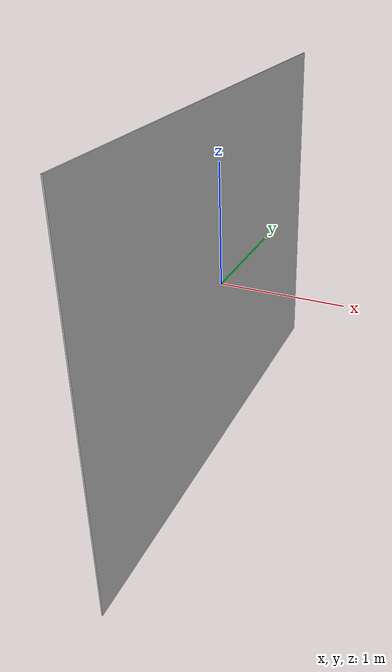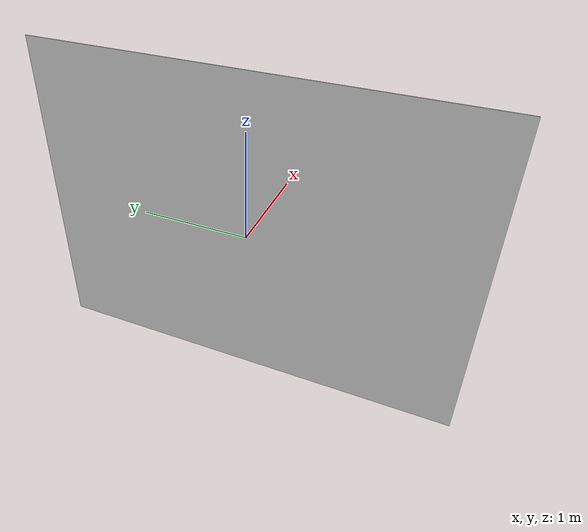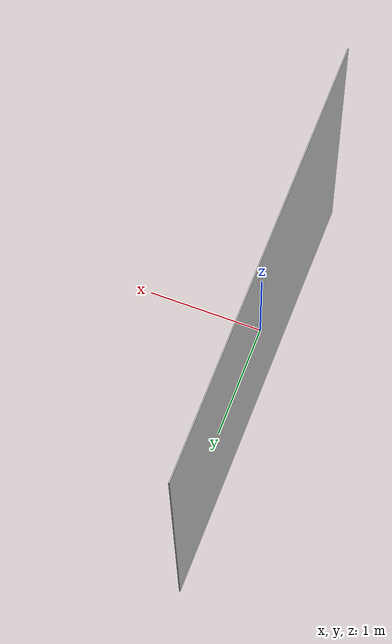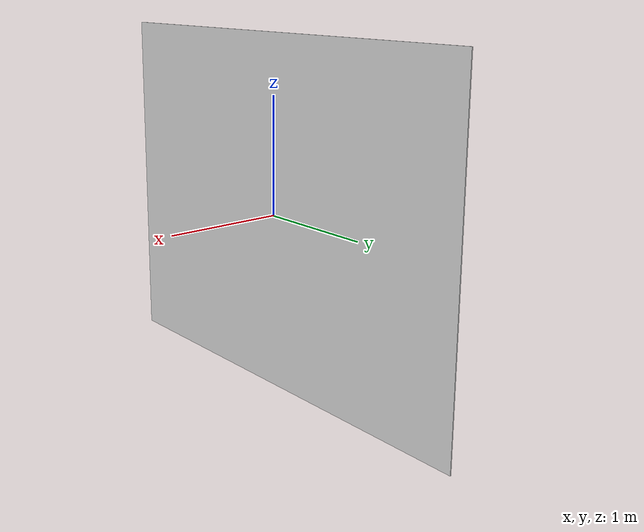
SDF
<?xml version="1.0"?>
<sdf version="1.6">
  <model name="poster_plane">
    <static>true</static>

    <link name="poster_link">
      <!-- 视觉：一个很薄的盒子，避免与墙面z-fighting -->
      <visual name="poster_visual">
        <pose>0 0 0 0 0 0</pose>
        <geometry>
          <!-- 海报尺寸：先设 1.0m x 0.7m（你可后面改） -->
          <box><size>0.01 4.0 3.0</size></box>
        </geometry>

        <material>
          <script>
            <uri>file:///root/catkin_ws/src/gazebo/poster_plane/materials/scripts</uri>
            <uri>file:///root/catkin_ws/src/gazebo/poster_plane/materials/textures</uri>
            <name>Poster/Poster</name>
          </script>
        </material>
      </visual>
    </link>
  </model>
</sdf>
